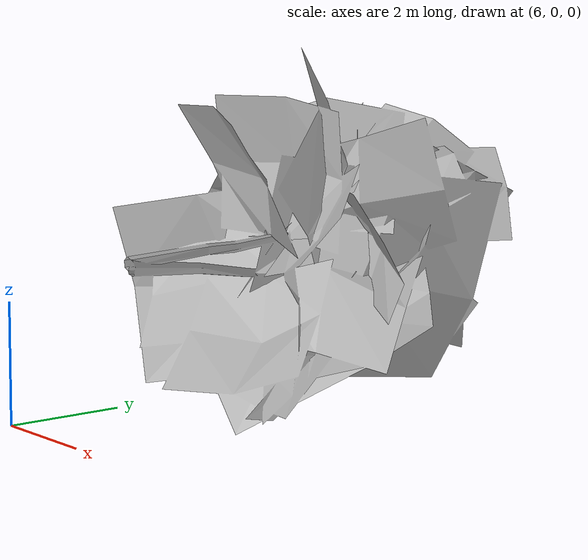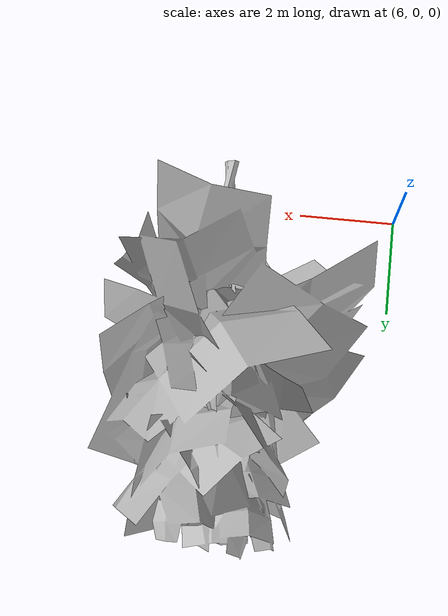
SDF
<?xml version="1.0" ?>
<sdf version="1.9">
  <model name="tree_01_1">
    <static>true</static>
    <link name="link">
      <collision name="collision">
        <pose>0 0 3.0 0 0 0</pose>
        <geometry>
          <box>
            <size>1.5 1.5 6.0</size>
          </box>
        </geometry>
      </collision>
      <visual name="visual">
        <geometry>
          <mesh>
            <uri>model://tree_01_1/meshes/Tree-01-1.obj</uri>
          </mesh>
        </geometry>
      </visual>
    </link>
  </model>
</sdf>
